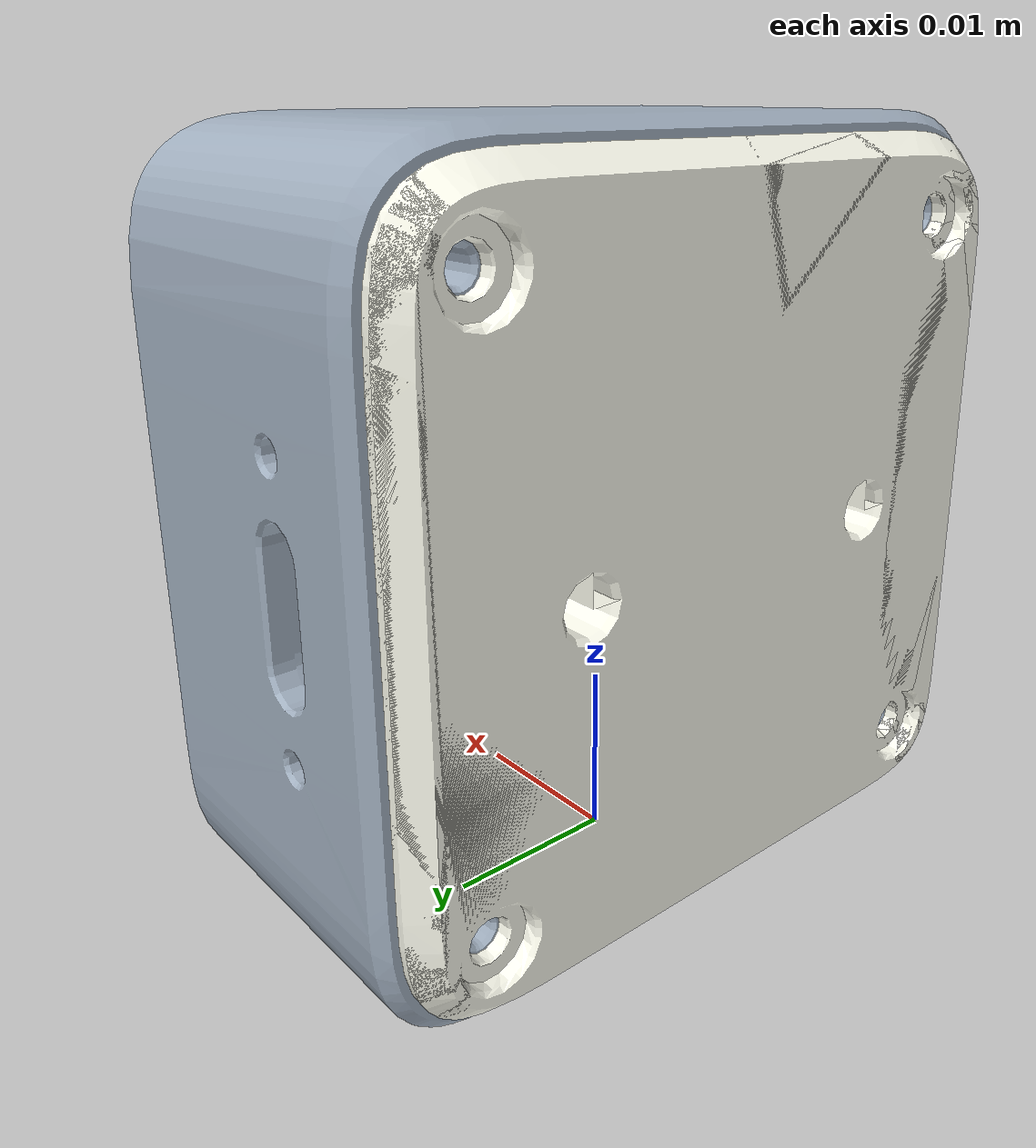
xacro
<?xml version="1.0" encoding="utf-8"?>
<robot xmlns:xacro="http://ros.org/wiki/xacro" name="gemini305">
  <xacro:property name="mesh_path" value="package://orbbec_camera/meshes/gemini305/" />
  <link
    name="camera_link" />
  <joint
    name="camera_link"
    type="fixed">
    <origin
      xyz="0.008126703388352 0.008999999999889 0.0210000000000001"
      rpy="0 0 0" />
    <parent
      link="camera_bottom_screw" />
    <child
      link="camera_link" />
    <axis
      xyz="0 0 0" />
  </joint>
  <link
    name="camera_left_color_optical_frame" />
  <joint
    name="camera_left_color_optical_frame"
    type="fixed">
    <origin
      xyz="0 0 0"
      rpy="-1.5707963267949 0 -1.5707963267949" />
    <parent
      link="camera_left_color_frame" />
    <child
      link="camera_left_color_optical_frame" />
    <axis
      xyz="0 0 0" />
  </joint>
  <link
    name="camera_right_color_optical_frame" />
  <joint
    name="camera_right_color_optical_frame"
    type="fixed">
    <origin
      xyz="0 0 0"
      rpy="-1.5707963267949 0 -1.5707963267949" />
    <parent
      link="camera_right_color_frame" />
    <child
      link="camera_right_color_optical_frame" />
    <axis
      xyz="0 0 0" />
  </joint>
  <link
    name="camera_right_color_frame">
    <inertial>
      <origin
        xyz="0.00919554952881716 -0.00818012505851481 0.000610136627721268"
        rpy="0 0 0" />
      <mass
        value="0.0195706749601595" />
      <inertia
        ixx="3.90938897723015E-06"
        ixy="-1.54949883302206E-09"
        ixz="2.45880849146857E-08"
        iyy="6.7877667129966E-06"
        iyz="-9.6363499961021E-09"
        izz="3.76189543642479E-06" />
    </inertial>
    <visual>
      <origin
        xyz="0 0 0"
        rpy="3.141592653589793 0 1.570796326794897" />
      <geometry>
        <mesh
          filename="${mesh_path}RGB_R.STL" />
      </geometry>
      <material
        name="">
        <color
          rgba="0.956862745098039 0.0470588235294118 0.874509803921569 1" />
      </material>
    </visual>
    <collision>
      <origin
        xyz="0 0 0"
        rpy="3.141592653589793 0 1.570796326794897" />
      <geometry>
        <mesh
          filename="${mesh_path}RGB_R.STL" />
      </geometry>
    </collision>
  </link>
  <joint
    name="camera_right_color_frame"
    type="fixed">
    <origin
      xyz="0 -0.018 0"
      rpy="0 0 0" />
    <parent
      link="camera_left_color_frame" />
    <child
      link="camera_right_color_frame" />
    <axis
      xyz="0 0 0" />
  </joint>
  <link
    name="camera_left_color_frame">
    <inertial>
      <origin
        xyz="-0.00880445047118283 -0.00818012505851481 0.000610136627721265"
        rpy="0 0 0" />
      <mass
        value="0.0195706749601595" />
      <inertia
        ixx="3.90938897723015E-06"
        ixy="-1.54949883302202E-09"
        ixz="2.45880849146858E-08"
        iyy="6.7877667129966E-06"
        iyz="-9.63634999610214E-09"
        izz="3.76189543642479E-06" />
    </inertial>
    <visual>
      <origin
        xyz="0 0 0"
        rpy="3.141592653589793 0 1.570796326794897" />
      <geometry>
        <mesh
          filename="${mesh_path}RGB_L.STL" />
      </geometry>
      <material
        name="">
        <color
          rgba="0.956862745098039 0.0470588235294118 0.874509803921569 1" />
      </material>
    </visual>
    <collision>
      <origin
        xyz="0 0 0"
        rpy="3.141592653589793 0 1.570796326794897" />
      <geometry>
        <mesh
          filename="${mesh_path}RGB_L.STL" />
      </geometry>
    </collision>
  </link>
  <joint
    name="camera_left_color_frame"
    type="fixed">
    <origin
      xyz="0 0 0"
      rpy="0 0 0" />
    <parent
      link="camera_link" />
    <child
      link="camera_left_color_frame" />
    <axis
      xyz="0 0 0" />
  </joint>
  <link
    name="camera_rear_screw_R">
    <inertial>
      <origin
        xyz="0.0101923558444971 0.0108662763094772 0.000609168219647137"
        rpy="0 0 0" />
      <mass
        value="0.0195706749601595" />
      <inertia
        ixx="3.90938897723015E-06"
        ixy="-1.54949883302208E-09"
        ixz="2.45880849146858E-08"
        iyy="6.7877667129966E-06"
        iyz="-9.63634999610213E-09"
        izz="3.76189543642479E-06" />
    </inertial>
    <visual>
      <origin
        xyz="0 0 0"
        rpy="3.141592653589793 0 1.570796326794897" />
      <geometry>
        <mesh
          filename="${mesh_path}camera_rear_screw_R.STL" />
      </geometry>
      <material
        name="">
        <color
          rgba="1 1 0.945098039215686 1" />
      </material>
    </visual>
    <collision>
      <origin
        xyz="0 0 0"
        rpy="3.141592653589793 0 1.570796326794897" />
      <geometry>
        <mesh
          filename="${mesh_path}camera_rear_screw_R.STL" />
      </geometry>
    </collision>
  </link>
  <joint
    name="camera_rear_screw_R"
    type="fixed">
    <origin
      xyz="-0.01091969797964 -0.0100031936844311 0.0209990315919259"
      rpy="0 0 0" />
    <parent
      link="camera_bottom_screw" />
    <child
      link="camera_rear_screw_R" />
    <axis
      xyz="0 0 0" />
  </joint>
  <link
    name="camera_rear_screw_L">
    <inertial>
      <origin
        xyz="-0.00980764415550291 0.0108662763094772 0.000609168219647134"
        rpy="0 0 0" />
      <mass
        value="0.0195706749601595" />
      <inertia
        ixx="3.90938897723015E-06"
        ixy="-1.54949883302204E-09"
        ixz="2.45880849146858E-08"
        iyy="6.7877667129966E-06"
        iyz="-9.63634999610211E-09"
        izz="3.76189543642479E-06" />
    </inertial>
    <visual>
      <origin
        xyz="0 0 0"
        rpy="3.141592653589793 0 1.570796326794897" />
      <geometry>
        <mesh
          filename="${mesh_path}camera_rear_screw_L.STL" />
      </geometry>
      <material
        name="">
        <color
          rgba="1 1 0.945098039215686 1" />
      </material>
    </visual>
    <collision>
      <origin
        xyz="0 0 0"
        rpy="3.141592653589793 0 1.570796326794897" />
      <geometry>
        <mesh
          filename="${mesh_path}camera_rear_screw_L.STL" />
      </geometry>
    </collision>
  </link>
  <joint
    name="camera_rear_screw_L"
    type="fixed">
    <origin
      xyz="-0.01091969797964 0.00999680631556896 0.0209990315919259"
      rpy="0 0 0" />
    <parent
      link="camera_bottom_screw" />
    <child
      link="camera_rear_screw_L" />
    <axis
      xyz="0 0 0" />
  </joint>
  <link
    name="camera_bottom_screw">
    <inertial>
      <origin
        xyz="0.000195549528928165 -5.34216701628029E-05 -0.0203898633722788"
        rpy="0 0 0" />
      <mass
        value="0.0195706749601595" />
      <inertia
        ixx="3.90938897723015E-06"
        ixy="-1.54949883302199E-09"
        ixz="2.45880849146858E-08"
        iyy="6.78776671299659E-06"
        iyz="-9.63634999610216E-09"
        izz="3.76189543642478E-06" />
    </inertial>
    <visual>
      <origin
        xyz="0 0 0"
        rpy="3.141592653589793 0 1.570796326794897" />
      <geometry>
        <mesh
          filename="${mesh_path}camera_bottom_screw.STL" />
      </geometry>
      <material
        name="">
        <color
          rgba="0.631372549019608 0.686274509803922 0.749019607843137 1" />
      </material>
    </visual>
    <collision>
      <origin
        xyz="0 0 0"
        rpy="3.141592653589793 0 1.570796326794897" />
      <geometry>
        <mesh
          filename="${mesh_path}camera_bottom_screw.STL" />
      </geometry>
    </collision>
  </link>
</robot>
